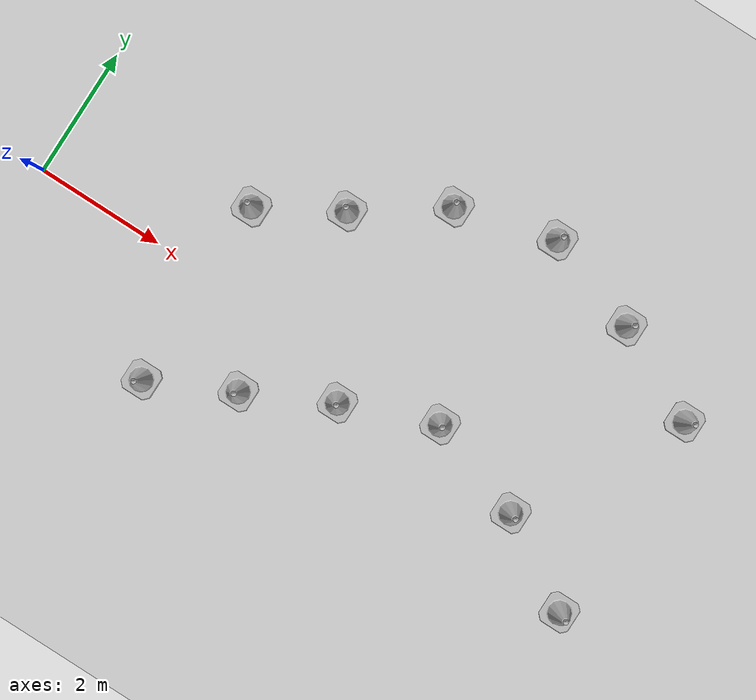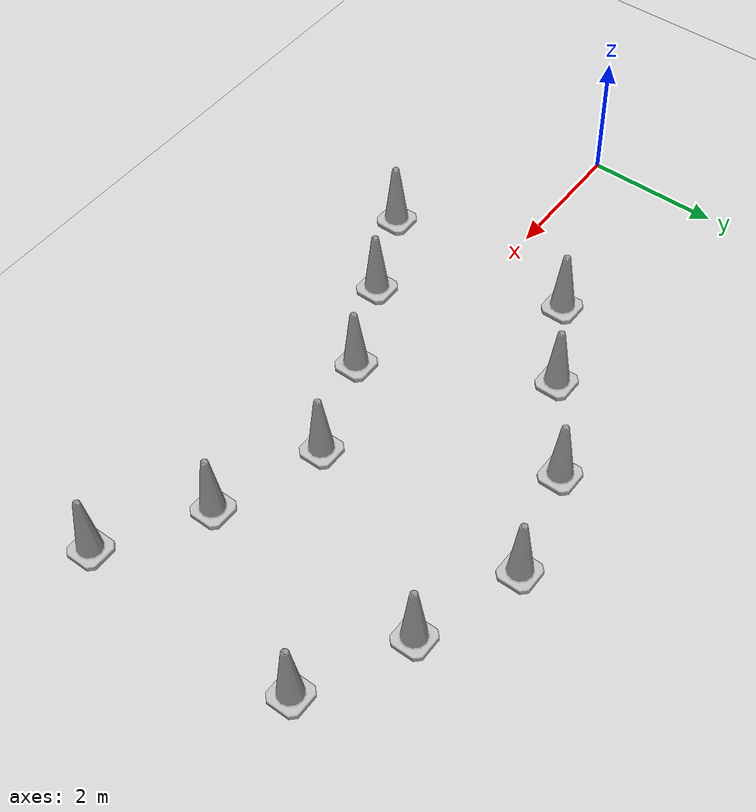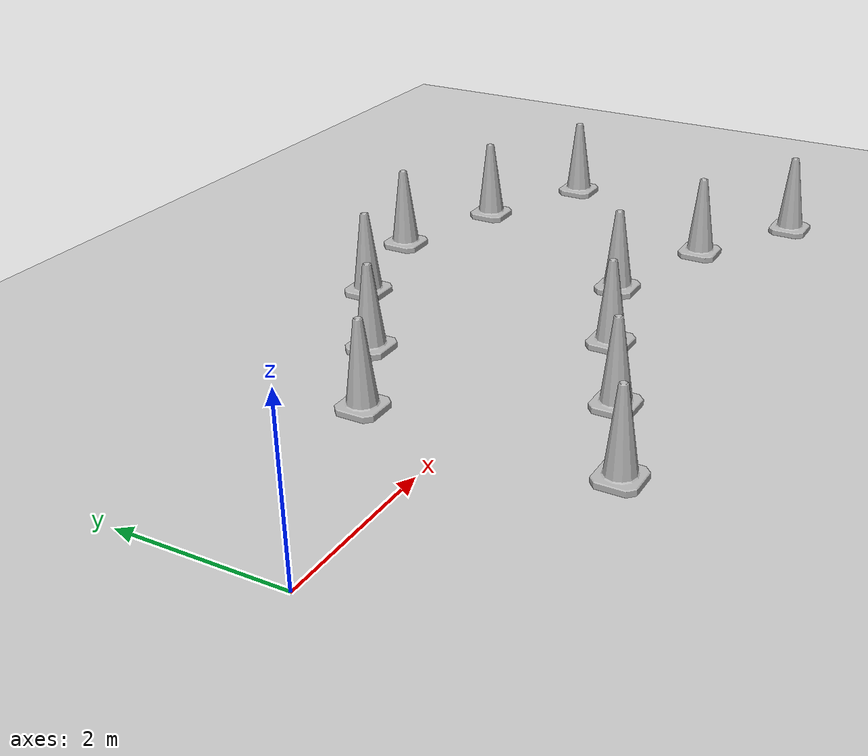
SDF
<sdf version="1.7">
 <world name="default">
  <light name="sun" type="directional">
   <pose>0 0 10 0 -0 0</pose>
   <diffuse>0.8 0.8 0.8 1</diffuse>
   <specular>0.2 0.2 0.2 1</specular>
   <attenuation>
    <range>1000</range>
    <constant>0.9</constant>
    <linear>0.01</linear>
    <quadratic>0.001</quadratic>
   </attenuation>
   <direction>-0.5 0.1 -0.9</direction>
   <spot><inner_angle>0</inner_angle><outer_angle>0</outer_angle><falloff>0</falloff></spot>
  </light>
  <model name="ground_plane">
   <static>1</static>
   <link name="link">
    <collision name="collision">
     <geometry><plane><normal>0 0 1</normal><size>100 100</size></plane></geometry>
     <surface>
      <contact><collide_bitmask>65535</collide_bitmask></contact>
      <friction><ode><mu>100</mu><mu2>50</mu2></ode></friction>
     </surface>
    </collision>
    <visual name="visual">
     <cast_shadows>0</cast_shadows>
     <geometry><plane><normal>0 0 1</normal><size>100 100</size></plane></geometry>
     <material>
      <script><uri>file://media/materials/scripts/gazebo.material</uri><name>Gazebo/Grey</name></script>
     </material>
    </visual>
   </link>
  </model>
  <gravity>0 0 -9.8</gravity>
  <magnetic_field>6e-06 2.3e-05 -4.2e-05</magnetic_field>
  <atmosphere type="adiabatic"/>
  <physics type="ode">
   <max_step_size>0.001</max_step_size>
   <real_time_factor>1</real_time_factor>
   <real_time_update_rate>1000</real_time_update_rate>
  </physics>
  <scene><ambient>0.4 0.4 0.4 1</ambient><background>0.7 0.7 0.7 1</background><shadows>1</shadows></scene>
  <spherical_coordinates>
   <surface_model>EARTH_WGS84</surface_model>
   <latitude_deg>0</latitude_deg>
   <longitude_deg>0</longitude_deg>
   <elevation>0</elevation>
   <heading_deg>0</heading_deg>
  </spherical_coordinates>
  <model name="Construction Cone">
   <link name="link">
    <collision name="collision">
     <geometry>
      <mesh><scale>10 10 10</scale><uri>model://construction_cone/meshes/construction_cone.dae</uri></mesh>
     </geometry>
    </collision>
    <visual name="visual">
     <geometry>
      <mesh><scale>10 10 10</scale><uri>model://construction_cone/meshes/construction_cone.dae</uri></mesh>
     </geometry>
    </visual>
    <inertial>
     <inertia><ixx>1</ixx><ixy>0</ixy><ixz>0</ixz><iyy>1</iyy><iyz>0</iyz><izz>1</izz></inertia>
     <mass>1</mass>
    </inertial>
   </link>
   <pose>2.87374 -1.80084 0 -0 -0 -0</pose>
  </model>
  <model name="Construction Cone_clone">
   <link name="link">
    <collision name="collision">
     <geometry>
      <mesh><scale>10 10 10</scale><uri>model://construction_cone/meshes/construction_cone.dae</uri></mesh>
     </geometry>
    </collision>
    <visual name="visual">
     <geometry>
      <mesh><scale>10 10 10</scale><uri>model://construction_cone/meshes/construction_cone.dae</uri></mesh>
     </geometry>
    </visual>
    <inertial>
     <inertia><ixx>1</ixx><ixy>0</ixy><ixz>0</ixz><iyy>1</iyy><iyz>0</iyz><izz>1</izz></inertia>
     <mass>1</mass>
    </inertial>
   </link>
   <pose>2.86145 1.1963 -0 0 -1e-06 0</pose>
  </model>
  <model name="Construction Cone_clone_0">
   <link name="link">
    <collision name="collision">
     <geometry>
      <mesh><scale>10 10 10</scale><uri>model://construction_cone/meshes/construction_cone.dae</uri></mesh>
     </geometry>
    </collision>
    <visual name="visual">
     <geometry>
      <mesh><scale>10 10 10</scale><uri>model://construction_cone/meshes/construction_cone.dae</uri></mesh>
     </geometry>
    </visual>
    <inertial>
     <inertia><ixx>1</ixx><ixy>0</ixy><ixz>0</ixz><iyy>1</iyy><iyz>0</iyz><izz>1</izz></inertia>
     <mass>1</mass>
    </inertial>
   </link>
   <pose>4.07341 1.89723 -1e-05 0 -0 0</pose>
  </model>
  <model name="Construction Cone_clone_1">
   <link name="link">
    <collision name="collision">
     <geometry>
      <mesh><scale>10 10 10</scale><uri>model://construction_cone/meshes/construction_cone.dae</uri></mesh>
     </geometry>
    </collision>
    <visual name="visual">
     <geometry>
      <mesh><scale>10 10 10</scale><uri>model://construction_cone/meshes/construction_cone.dae</uri></mesh>
     </geometry>
    </visual>
    <inertial>
     <inertia><ixx>1</ixx><ixy>0</ixy><ixz>0</ixz><iyy>1</iyy><iyz>0</iyz><izz>1</izz></inertia>
     <mass>1</mass>
    </inertial>
   </link>
   <pose>4.16124 -1.18458 0 -0 -0 -0</pose>
  </model>
  <model name="Construction Cone_clone_2">
   <link name="link">
    <collision name="collision">
     <geometry>
      <mesh><scale>10 10 10</scale><uri>model://construction_cone/meshes/construction_cone.dae</uri></mesh>
     </geometry>
    </collision>
    <visual name="visual">
     <geometry>
      <mesh><scale>10 10 10</scale><uri>model://construction_cone/meshes/construction_cone.dae</uri></mesh>
     </geometry>
    </visual>
    <inertial>
     <inertia><ixx>1</ixx><ixy>0</ixy><ixz>0</ixz><iyy>1</iyy><iyz>0</iyz><izz>1</izz></inertia>
     <mass>1</mass>
    </inertial>
   </link>
   <pose>5.47087 -0.539153 -1e-05 -1e-06 0 0</pose>
  </model>
  <model name="Construction Cone_clone_3">
   <link name="link">
    <collision name="collision">
     <geometry>
      <mesh><scale>10 10 10</scale><uri>model://construction_cone/meshes/construction_cone.dae</uri></mesh>
     </geometry>
    </collision>
    <visual name="visual">
     <geometry>
      <mesh><scale>10 10 10</scale><uri>model://construction_cone/meshes/construction_cone.dae</uri></mesh>
     </geometry>
    </visual>
    <inertial>
     <inertia><ixx>1</ixx><ixy>0</ixy><ixz>0</ixz><iyy>1</iyy><iyz>0</iyz><izz>1</izz></inertia>
     <mass>1</mass>
    </inertial>
   </link>
   <pose>5.35732 2.79711 -0 0 -1e-06 0</pose>
  </model>
  <model name="Construction Cone_clone_4">
   <link name="link">
    <collision name="collision">
     <geometry>
      <mesh><scale>10 10 10</scale><uri>model://construction_cone/meshes/construction_cone.dae</uri></mesh>
     </geometry>
    </collision>
    <visual name="visual">
     <geometry>
      <mesh><scale>10 10 10</scale><uri>model://construction_cone/meshes/construction_cone.dae</uri></mesh>
     </geometry>
    </visual>
    <inertial>
     <inertia><ixx>1</ixx><ixy>0</ixy><ixz>0</ixz><iyy>1</iyy><iyz>0</iyz><izz>1</izz></inertia>
     <mass>1</mass>
    </inertial>
   </link>
   <pose>6.90752 0.006043 -0 0 -0 0</pose>
  </model>
  <model name="Construction Cone_clone_5">
   <link name="link">
    <collision name="collision">
     <geometry>
      <mesh><scale>10 10 10</scale><uri>model://construction_cone/meshes/construction_cone.dae</uri></mesh>
     </geometry>
    </collision>
    <visual name="visual">
     <geometry>
      <mesh><scale>10 10 10</scale><uri>model://construction_cone/meshes/construction_cone.dae</uri></mesh>
     </geometry>
    </visual>
    <inertial>
     <inertia><ixx>1</ixx><ixy>0</ixy><ixz>0</ixz><iyy>1</iyy><iyz>0</iyz><izz>1</izz></inertia>
     <mass>1</mass>
    </inertial>
   </link>
   <pose>6.89754 3.2058 -0 -0 -0 -0</pose>
  </model>
  <model name="Construction Cone_clone_6">
   <link name="link">
    <collision name="collision">
     <geometry>
      <mesh><scale>10 10 10</scale><uri>model://construction_cone/meshes/construction_cone.dae</uri></mesh>
     </geometry>
    </collision>
    <visual name="visual">
     <geometry>
      <mesh><scale>10 10 10</scale><uri>model://construction_cone/meshes/construction_cone.dae</uri></mesh>
     </geometry>
    </visual>
    <inertial>
     <inertia><ixx>1</ixx><ixy>0</ixy><ixz>0</ixz><iyy>1</iyy><iyz>0</iyz><izz>1</izz></inertia>
     <mass>1</mass>
    </inertial>
   </link>
   <pose>8.47914 -0.526804 -3e-06 -3e-06 -1e-06 -0</pose>
  </model>
  <model name="Construction Cone_clone_7">
   <link name="link">
    <collision name="collision">
     <geometry>
      <mesh><scale>10 10 10</scale><uri>model://construction_cone/meshes/construction_cone.dae</uri></mesh>
     </geometry>
    </collision>
    <visual name="visual">
     <geometry>
      <mesh><scale>10 10 10</scale><uri>model://construction_cone/meshes/construction_cone.dae</uri></mesh>
     </geometry>
    </visual>
    <inertial>
     <inertia><ixx>1</ixx><ixy>0</ixy><ixz>0</ixz><iyy>1</iyy><iyz>0</iyz><izz>1</izz></inertia>
     <mass>1</mass>
    </inertial>
   </link>
   <pose>8.42695 2.69574 -0 0 -0 0</pose>
  </model>
  <model name="Construction Cone_clone_8">
   <link name="link">
    <collision name="collision">
     <geometry>
      <mesh><scale>10 10 10</scale><uri>model://construction_cone/meshes/construction_cone.dae</uri></mesh>
     </geometry>
    </collision>
    <visual name="visual">
     <geometry>
      <mesh><scale>10 10 10</scale><uri>model://construction_cone/meshes/construction_cone.dae</uri></mesh>
     </geometry>
    </visual>
    <inertial>
     <inertia><ixx>1</ixx><ixy>0</ixy><ixz>0</ixz><iyy>1</iyy><iyz>0</iyz><izz>1</izz></inertia>
     <mass>1</mass>
    </inertial>
   </link>
   <pose>9.8633 -1.36556 -4e-06 4e-06 -1e-06 0</pose>
  </model>
  <model name="Construction Cone_clone_9">
   <link name="link">
    <collision name="collision">
     <geometry>
      <mesh><scale>10 10 10</scale><uri>model://construction_cone/meshes/construction_cone.dae</uri></mesh>
     </geometry>
    </collision>
    <visual name="visual">
     <geometry>
      <mesh><scale>10 10 10</scale><uri>model://construction_cone/meshes/construction_cone.dae</uri></mesh>
     </geometry>
    </visual>
    <inertial>
     <inertia><ixx>1</ixx><ixy>0</ixy><ixz>0</ixz><iyy>1</iyy><iyz>0</iyz><izz>1</izz></inertia>
     <mass>1</mass>
    </inertial>
   </link>
   <pose>9.90118 1.97379 -0 0 -0 0</pose>
  </model>
 </world>
</sdf>
